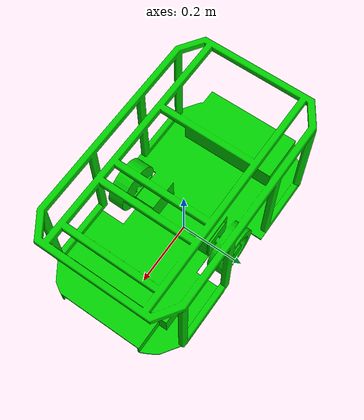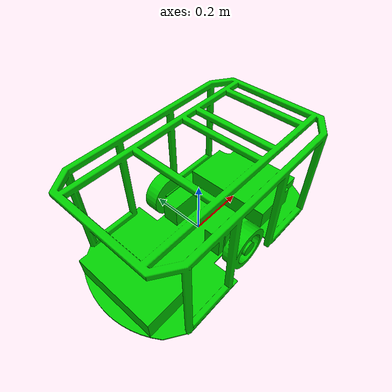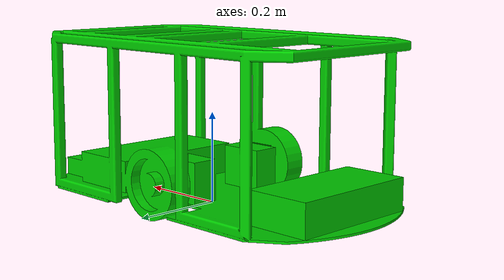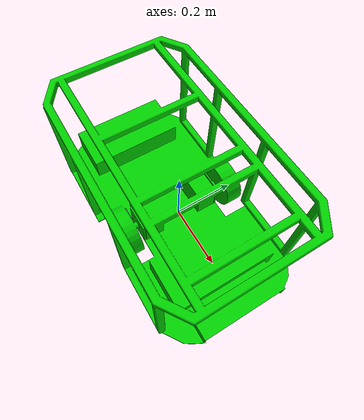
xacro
<?xml version="1.0"?>
<robot xmlns:xacro="http://www.ros.org/wiki/xacro" name="agv">

  <link name="base_footprint"/>

  <joint name="base_joint" type="fixed">
    <parent link="base_footprint"/>
    <child link="base_link"/>
    <origin xyz="0 0 0" rpy="0 0 0"/>
  </joint>

  <link name="base_link">
    <visual>
      <origin xyz="0 0 0" rpy="0 0 0"/>
      <geometry>
        <mesh filename="package://robot_description/meshes/agv.stl" scale="1 1 1"/>
      </geometry>
      <material name="green">
        <color rgba="0 0.8 0 1"/>
      </material>
    </visual>

    <collision>
      <origin xyz="0 0 0" rpy="0 0 0"/>
      <geometry>
        <mesh filename="package://robot_description/meshes/agv.stl" scale="1 1 1"/>
      </geometry>
    </collision>

    <inertial>
      <mass value="1.0"/>
      <inertia ixx="0.1" ixy="0" ixz="0" iyy="0.1" iyz="0" izz="0.1"/>
    </inertial>
  </link>

</robot>
